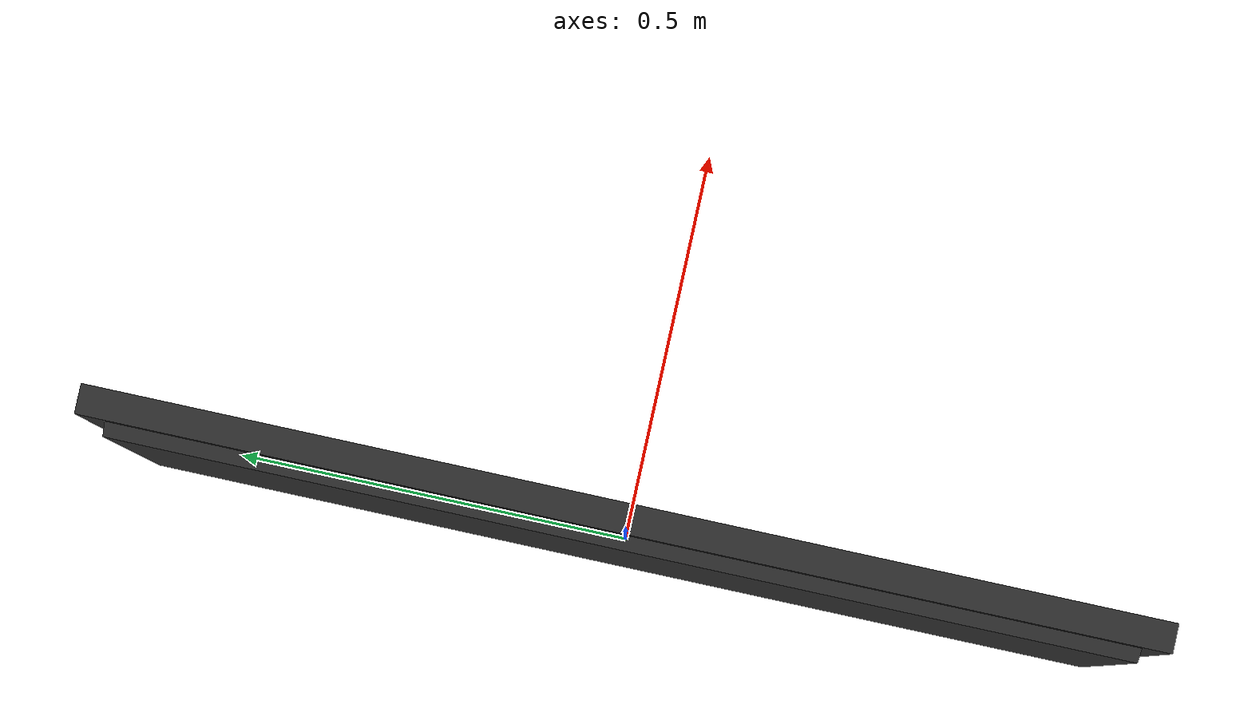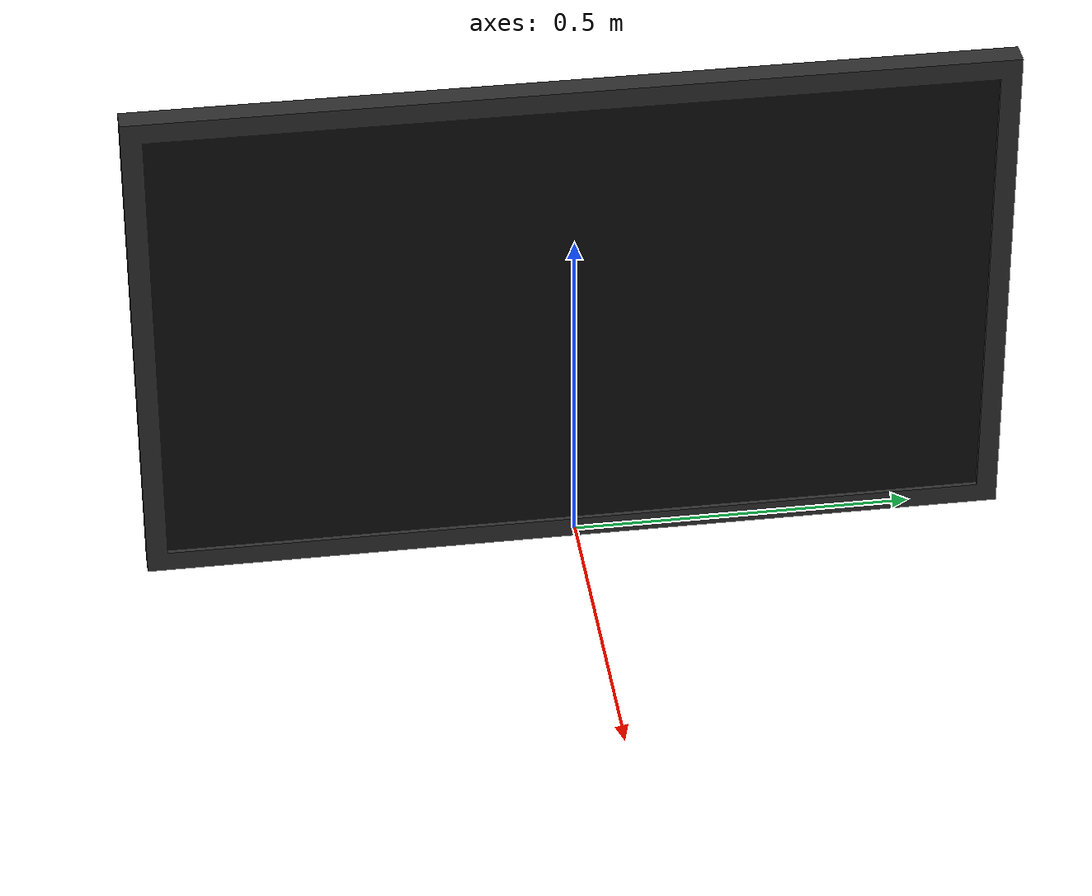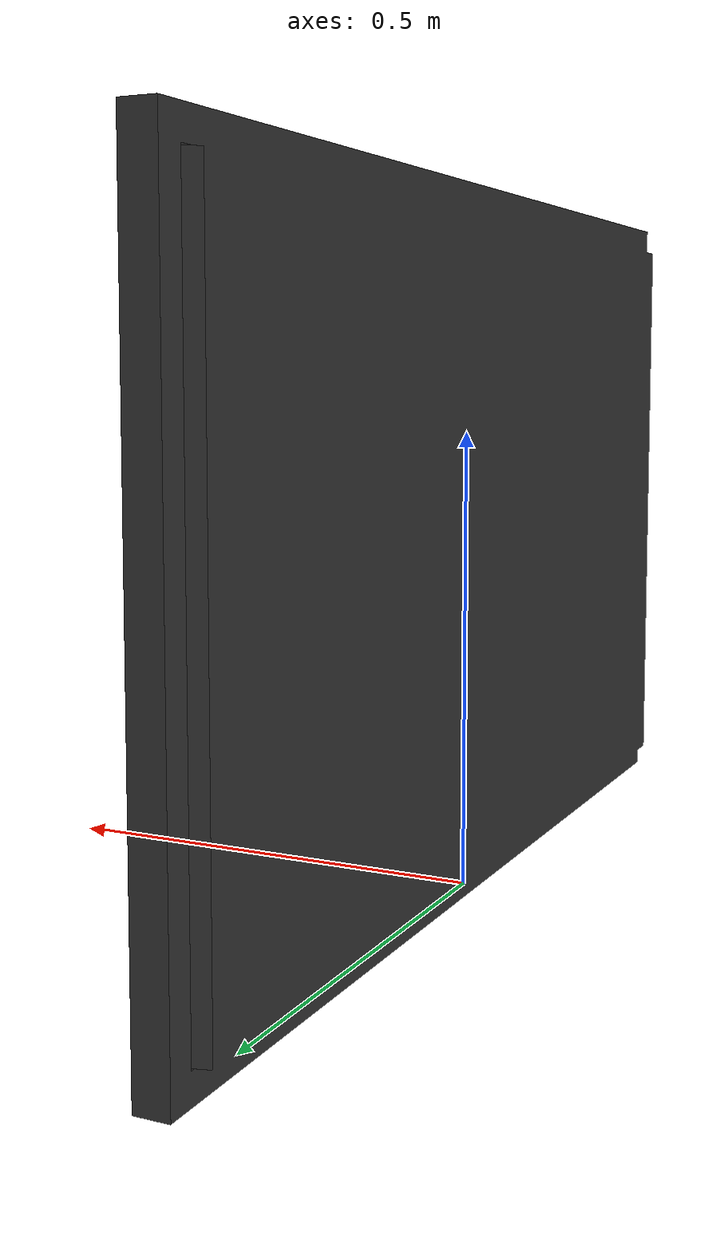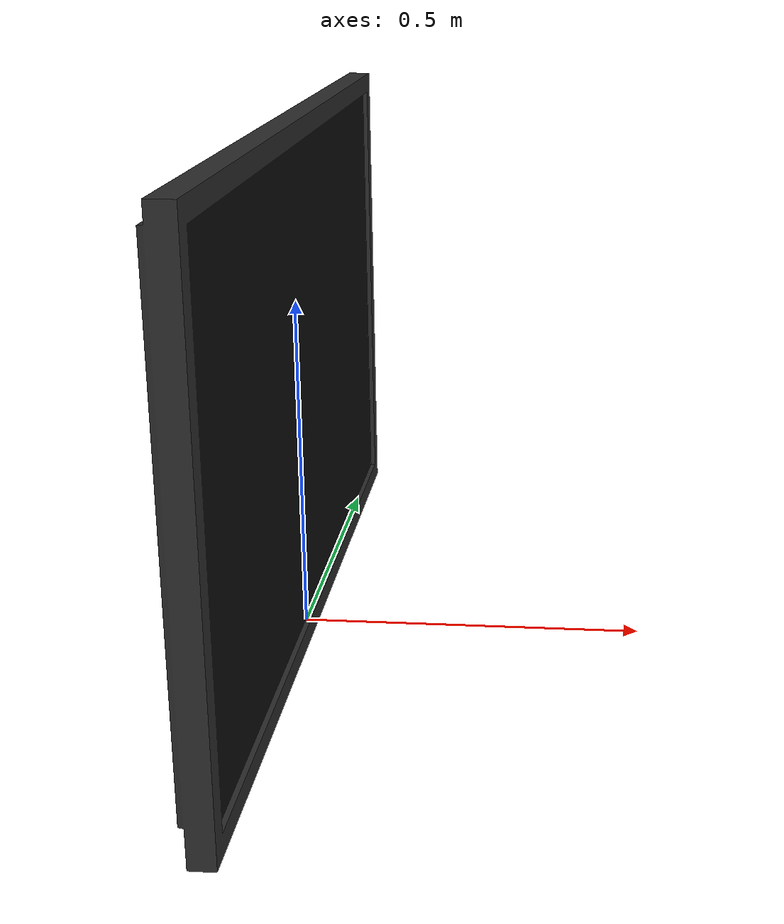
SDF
<?xml version='1.0' ?>
<sdf version='1.6'>
  <model name='tv'>
    <static>true</static>
    <link name='link'>
      <collision name='collision'>
        <geometry>
          <mesh>
            <uri>model://volta_simulation/models/tv/meshes/tv.dae</uri>
          </mesh>
        </geometry>
        <surface>
          <friction>
            <ode>
              <mu>100</mu>
              <mu2>50</mu2>
            </ode>
          </friction>
        </surface>
      </collision>
      <visual name='visual'>
        <geometry>
          <mesh>
            <uri>model://volta_simulation/models/tv/meshes/tv.dae</uri>
          </mesh>
        </geometry>
      </visual>
    </link>
  </model>
</sdf>
